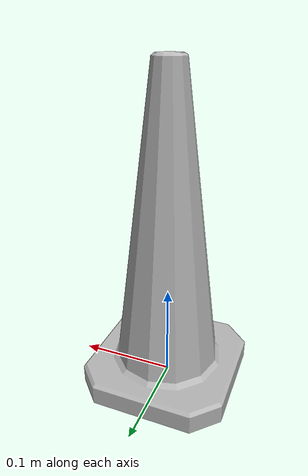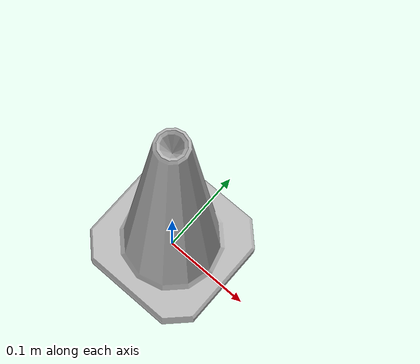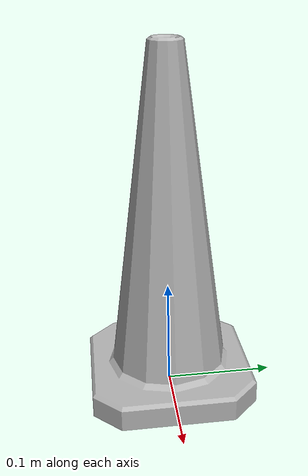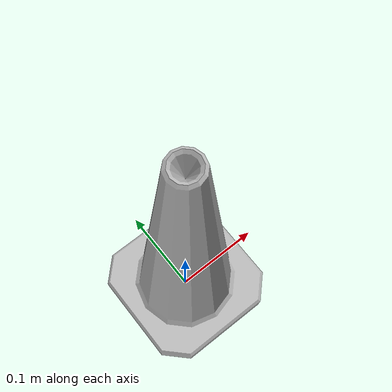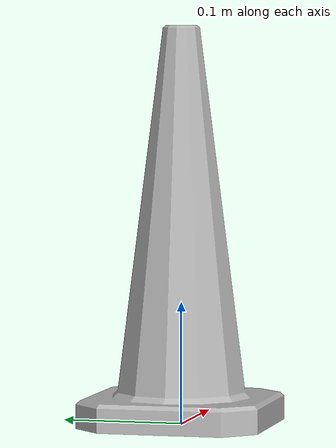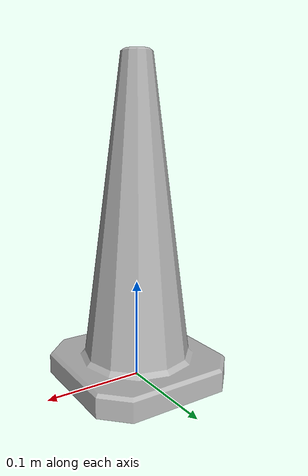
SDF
<?xml version="1.0" ?>
<sdf version="1.5">
  <model name="Construction Cone Small">
    <link name="link">
      <inertial>
    <mass>1.500</mass>
     <inertia>
       <ixx>0.00045417</ixx>
       <iyy>0.00054170</iyy>
       <izz>0.00007500</izz>
       <ixy>0</ixy>
       <ixz>0</ixz>
       <iyz>0</iyz>
     </inertia>
  </inertial>
      <collision name="collision">
        <geometry>
          <mesh>
            <scale>3 3 3</scale>
            <uri>model://construction_cone_jtl/meshes/construction_cone.dae</uri>
          </mesh>
        </geometry>
      </collision>
      <visual name="visual">
        <geometry>
          <mesh>
            <scale>3 3 3</scale>
            <uri>model://construction_cone_jtl/meshes/construction_cone.dae</uri>
          </mesh>
        </geometry>
      </visual>
    </link>
  </model>
</sdf>
